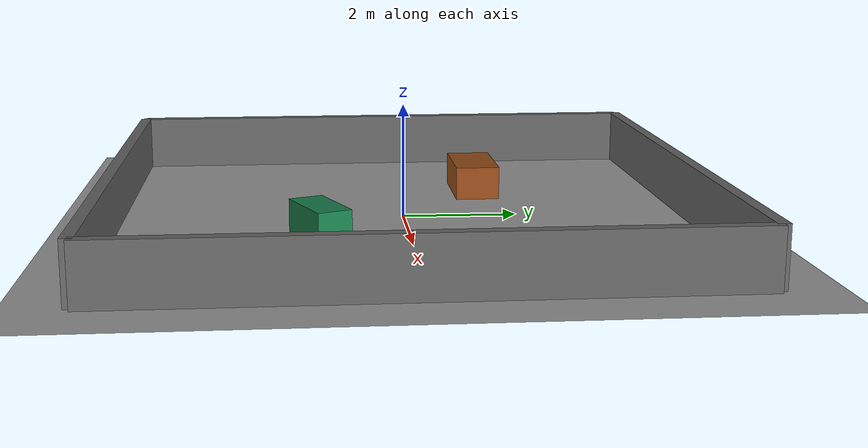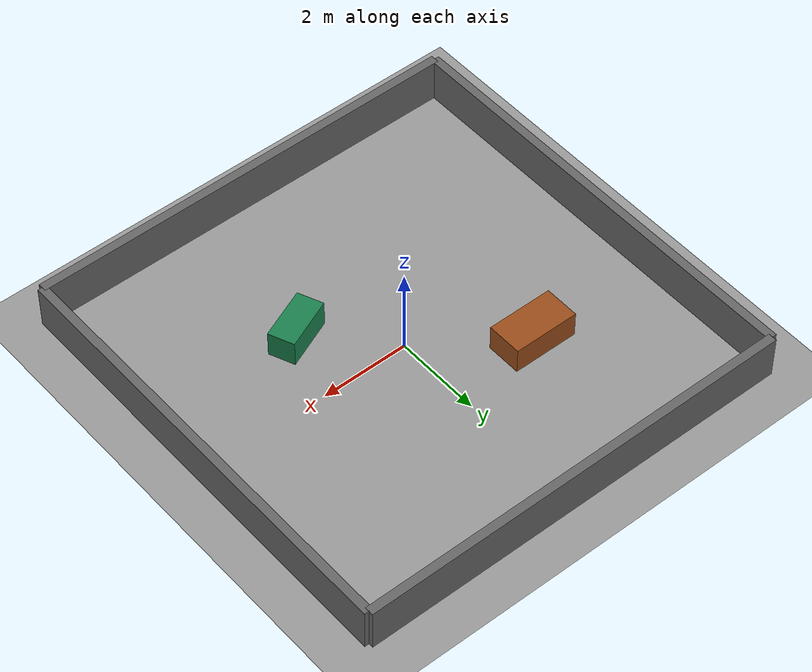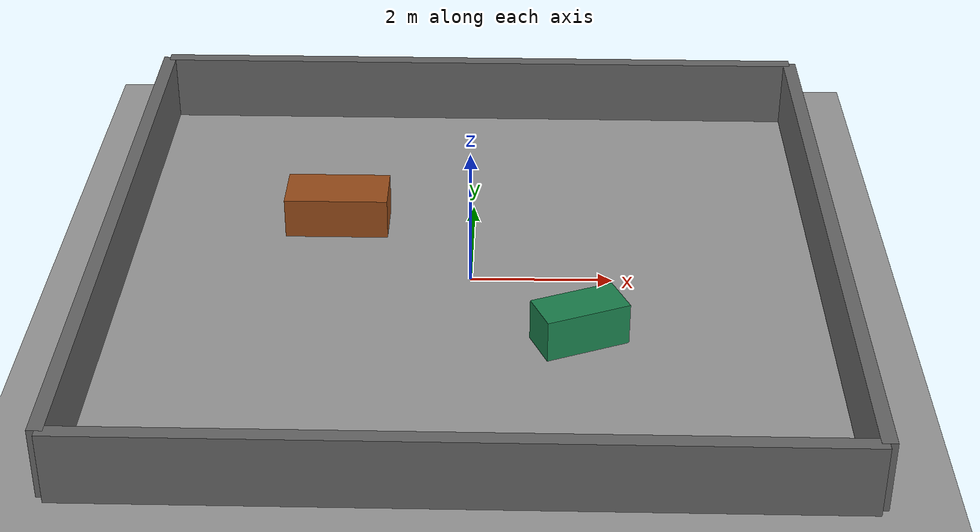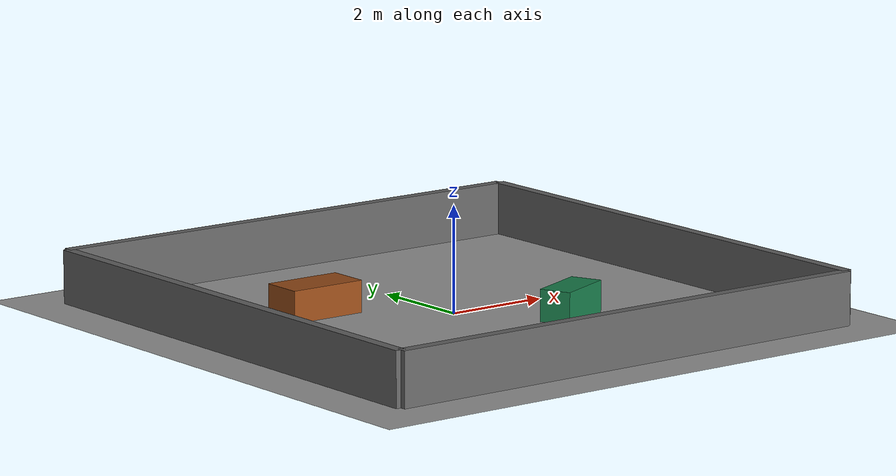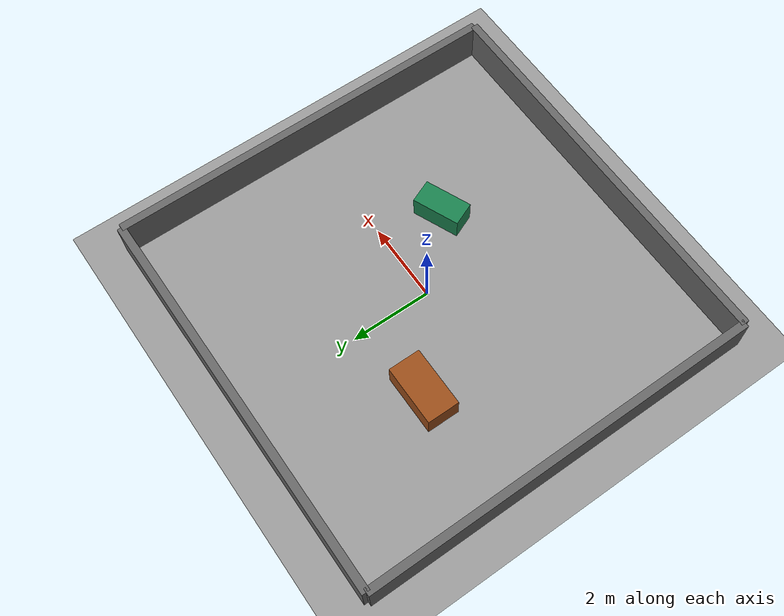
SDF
<?xml version="1.0"?>
<sdf version="1.9">
  <world name="simplebot_arena">

    <!-- Physics -->
    <physics name="default" type="ode">
      <max_step_size>0.001</max_step_size>
      <real_time_factor>1.0</real_time_factor>
      <real_time_update_rate>1000</real_time_update_rate>
    </physics>

    <!-- Sun -->
    <light type="directional" name="sun">
      <cast_shadows>true</cast_shadows>
      <pose>0 0 10 0 0 0</pose>
      <diffuse>0.9 0.9 0.9 1</diffuse>
      <specular>0.3 0.3 0.3 1</specular>
      <direction>-0.5 0.1 -0.9</direction>
    </light>

    <!-- Ground Plane -->
    <model name="ground_plane">
      <static>true</static>
      <link name="link">
        <collision name="collision">
          <geometry><plane><normal>0 0 1</normal><size>100 100</size></plane></geometry>
        </collision>
        <visual name="visual">
          <geometry><plane><normal>0 0 1</normal><size>100 100</size></plane></geometry>
          <material>
            <ambient>0.6 0.6 0.6 1</ambient>
            <diffuse>0.6 0.6 0.6 1</diffuse>
          </material>
        </visual>
      </link>
    </model>

    <!-- ==================== Arena Walls ==================== -->
    <!-- North wall -->
    <model name="wall_north">
      <static>true</static>
      <pose>0 5 0.5 0 0 0</pose>
      <link name="link">
        <collision name="collision">
          <geometry><box><size>10 0.2 1.0</size></box></geometry>
        </collision>
        <visual name="visual">
          <geometry><box><size>10 0.2 1.0</size></box></geometry>
          <material><ambient>0.4 0.4 0.4 1</ambient><diffuse>0.4 0.4 0.4 1</diffuse></material>
        </visual>
      </link>
    </model>

    <!-- South wall -->
    <model name="wall_south">
      <static>true</static>
      <pose>0 -5 0.5 0 0 0</pose>
      <link name="link">
        <collision name="collision">
          <geometry><box><size>10 0.2 1.0</size></box></geometry>
        </collision>
        <visual name="visual">
          <geometry><box><size>10 0.2 1.0</size></box></geometry>
          <material><ambient>0.4 0.4 0.4 1</ambient><diffuse>0.4 0.4 0.4 1</diffuse></material>
        </visual>
      </link>
    </model>

    <!-- East wall -->
    <model name="wall_east">
      <static>true</static>
      <pose>5 0 0.5 0 0 1.5708</pose>
      <link name="link">
        <collision name="collision">
          <geometry><box><size>10 0.2 1.0</size></box></geometry>
        </collision>
        <visual name="visual">
          <geometry><box><size>10 0.2 1.0</size></box></geometry>
          <material><ambient>0.4 0.4 0.4 1</ambient><diffuse>0.4 0.4 0.4 1</diffuse></material>
        </visual>
      </link>
    </model>

    <!-- West wall -->
    <model name="wall_west">
      <static>true</static>
      <pose>-5 0 0.5 0 0 1.5708</pose>
      <link name="link">
        <collision name="collision">
          <geometry><box><size>10 0.2 1.0</size></box></geometry>
        </collision>
        <visual name="visual">
          <geometry><box><size>10 0.2 1.0</size></box></geometry>
          <material><ambient>0.4 0.4 0.4 1</ambient><diffuse>0.4 0.4 0.4 1</diffuse></material>
        </visual>
      </link>
    </model>

    <!-- ==================== Interior Obstacles ==================== -->
    <model name="obstacle_1">
      <static>true</static>
      <pose>-2 1.5 0.3 0 0 0</pose>
      <link name="link">
        <collision name="collision">
          <geometry><box><size>1.5 0.8 0.6</size></box></geometry>
        </collision>
        <visual name="visual">
          <geometry><box><size>1.5 0.8 0.6</size></box></geometry>
          <material><ambient>0.6 0.3 0.1 1</ambient><diffuse>0.6 0.3 0.1 1</diffuse></material>
        </visual>
      </link>
    </model>

    <model name="obstacle_2">
      <static>true</static>
      <pose>1.5 -1.5 0.3 0 0 0.4</pose>
      <link name="link">
        <collision name="collision">
          <geometry><box><size>1.2 0.6 0.6</size></box></geometry>
        </collision>
        <visual name="visual">
          <geometry><box><size>1.2 0.6 0.6</size></box></geometry>
          <material><ambient>0.1 0.5 0.3 1</ambient><diffuse>0.1 0.5 0.3 1</diffuse></material>
        </visual>
      </link>
    </model>

  </world>
</sdf>
